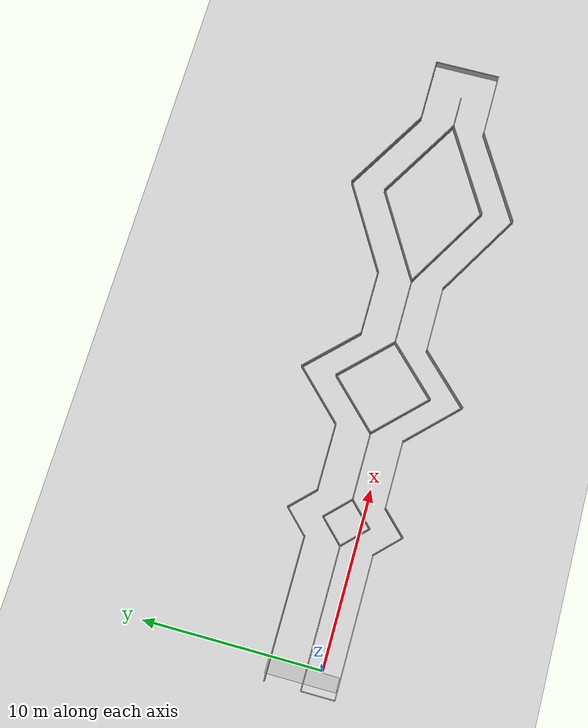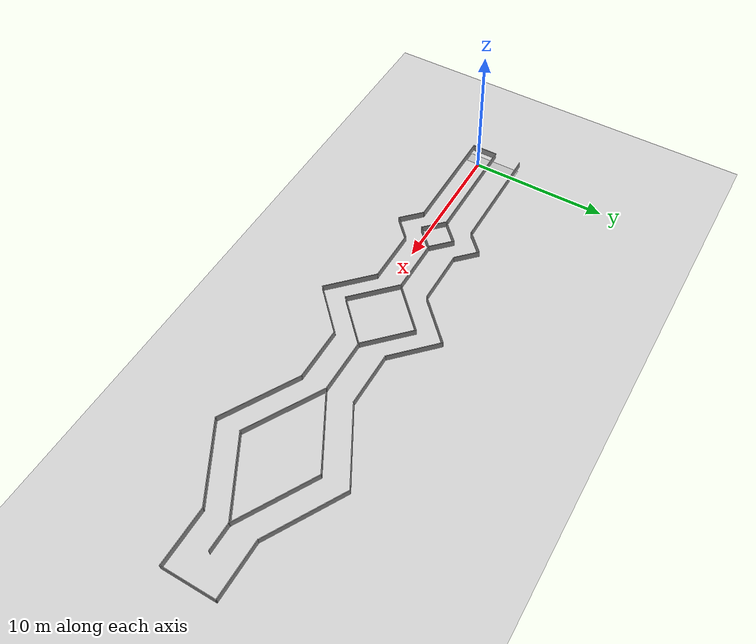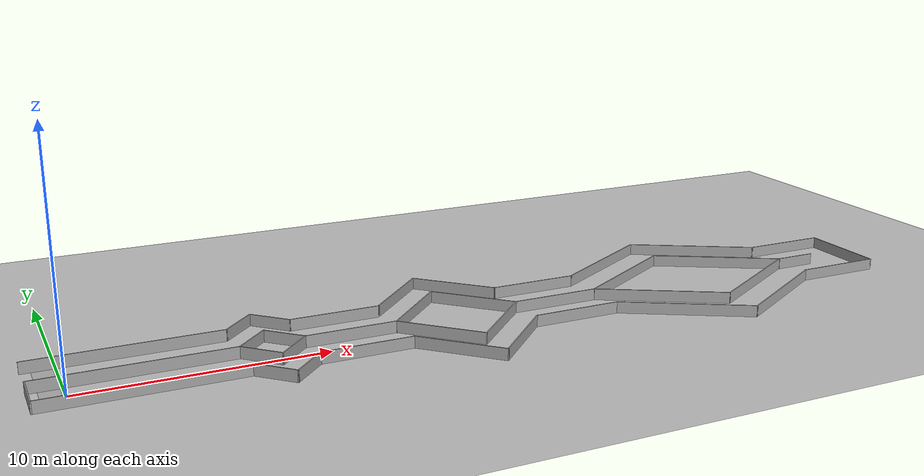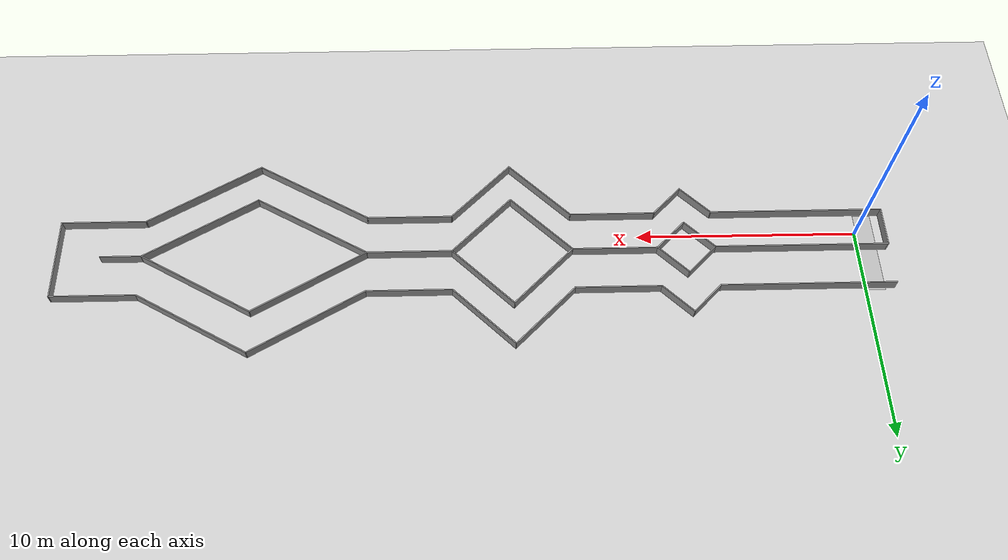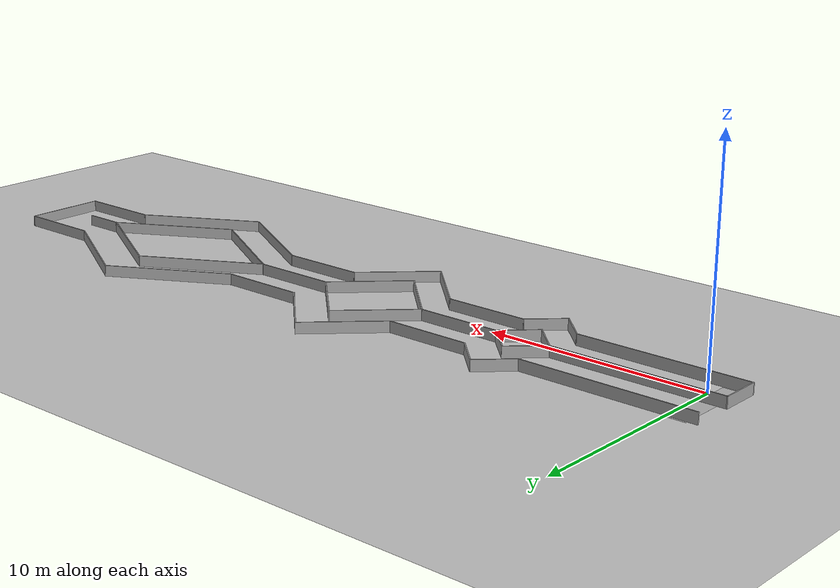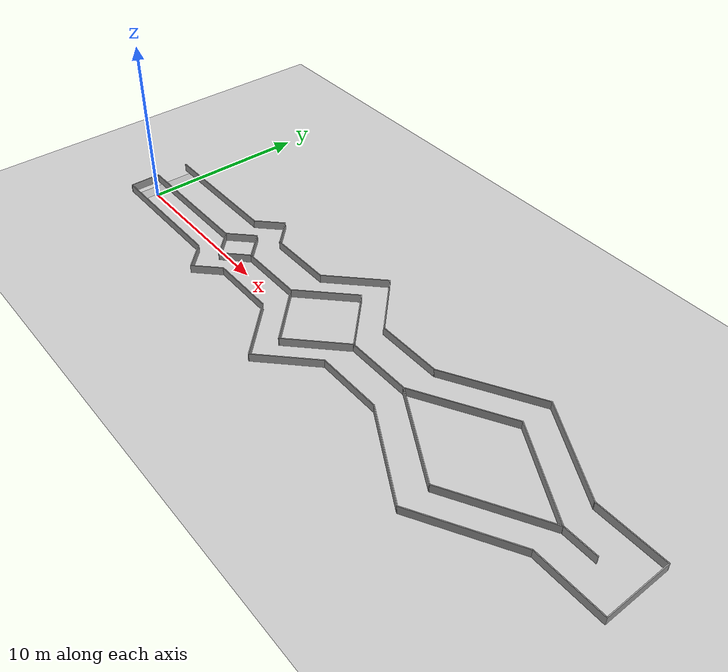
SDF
<sdf version="1.6">
 <world name="default">
  <light name="sun" type="directional">
   <pose>0 0 10 0 -0 0</pose>
   <diffuse>0.8 0.8 0.8 1</diffuse>
   <specular>0.1 0.1 0.1 1</specular>
   <attenuation>
    <range>1000</range>
    <constant>0.9</constant>
    <linear>0.01</linear>
    <quadratic>0.001</quadratic>
   </attenuation>
   <direction>-0.5 0.5 -1</direction>
  </light>
  <model name="ground_plane">
   <static>1</static>
   <link name="link">
    <collision name="collision">
     <geometry><plane><normal>0 0 1</normal><size>100 100</size></plane></geometry>
     <surface><friction><ode><mu>100</mu><mu2>50</mu2></ode></friction></surface>
    </collision>
    <visual name="visual">
     <cast_shadows>0</cast_shadows>
     <geometry><plane><normal>0 0 1</normal><size>100 100</size></plane></geometry>
     <material>
      <script><uri>file://media/materials/scripts/gazebo.material</uri><name>Gazebo/Grey</name></script>
     </material>
    </visual>
   </link>
  </model>
  <gravity>0 0 -9.8</gravity>
  <magnetic_field>6e-06 2.3e-05 -4.2e-05</magnetic_field>
  <atmosphere type="adiabatic"/>
  <physics name="default_physics" default="0" type="ode">
   <max_step_size>0.001</max_step_size>
   <real_time_factor>1</real_time_factor>
   <real_time_update_rate>1000</real_time_update_rate>
  </physics>
  <scene><ambient>0.4 0.4 0.4 1</ambient><background>0.7 0.7 0.7 1</background><shadows>1</shadows></scene>
  <spherical_coordinates>
   <surface_model>EARTH_WGS84</surface_model>
   <latitude_deg>0</latitude_deg>
   <longitude_deg>0</longitude_deg>
   <elevation>0</elevation>
   <heading_deg>0</heading_deg>
  </spherical_coordinates>
  <model name="Untitled">
   <pose>17.5019 0.90992 0 0 -0 0</pose>
   <link name="Wall_10">
    <collision name="Wall_10_Collision">
     <geometry><box><size>1.89979 0.05 0.5</size></box></geometry>
     <pose>0 0 0.25 0 -0 0</pose>
    </collision>
    <visual name="Wall_10_Visual">
     <pose>0 0 0.25 0 -0 0</pose>
     <geometry><box><size>1.89979 0.05 0.5</size></box></geometry>
     <material>
      <script><uri>file://media/materials/scripts/gazebo.material</uri><name>Gazebo/Grey</name></script>
      <ambient>1 1 1 1</ambient>
     </material>
    </visual>
    <pose>-10.293 -2.579 0 0 0 -0.785398</pose>
   </link>
   <link name="Wall_11">
    <collision name="Wall_11_Collision">
     <geometry><box><size>1.89979 0.05 0.5</size></box></geometry>
     <pose>0 0 0.25 0 -0 0</pose>
    </collision>
    <visual name="Wall_11_Visual">
     <pose>0 0 0.25 0 -0 0</pose>
     <geometry><box><size>1.89979 0.05 0.5</size></box></geometry>
     <material>
      <script><uri>file://media/materials/scripts/gazebo.material</uri><name>Gazebo/Grey</name></script>
      <ambient>1 1 1 1</ambient>
     </material>
    </visual>
    <pose>-8.985 -2.579 0 0 -0 0.785398</pose>
   </link>
   <link name="Wall_12">
    <collision name="Wall_12_Collision">
     <geometry><box><size>3.9 0.05 0.5</size></box></geometry>
     <pose>0 0 0.25 0 -0 0</pose>
    </collision>
    <visual name="Wall_12_Visual">
     <pose>0 0 0.25 0 -0 0</pose>
     <geometry><box><size>3.9 0.05 0.5</size></box></geometry>
     <material>
      <script><uri>file://media/materials/scripts/gazebo.material</uri><name>Gazebo/Grey</name></script>
      <ambient>1 1 1 1</ambient>
     </material>
    </visual>
    <pose>-6.406 -1.925 0 0 -0 0</pose>
   </link>
   <link name="Wall_13">
    <collision name="Wall_13_Collision">
     <geometry><box><size>3.9002 0.05 0.5</size></box></geometry>
     <pose>0 0 0.25 0 -0 0</pose>
    </collision>
    <visual name="Wall_13_Visual">
     <pose>0 0 0.25 0 -0 0</pose>
     <geometry><box><size>3.9002 0.05 0.5</size></box></geometry>
     <material>
      <script><uri>file://media/materials/scripts/gazebo.material</uri><name>Gazebo/Grey</name></script>
      <ambient>1 1 1 1</ambient>
     </material>
    </visual>
    <pose>-3.1195 -3.286 0 0 0 -0.785214</pose>
   </link>
   <link name="Wall_14">
    <collision name="Wall_14_Collision">
     <geometry><box><size>3.89949 0.05 0.5</size></box></geometry>
     <pose>0 0 0.25 0 -0 0</pose>
    </collision>
    <visual name="Wall_14_Visual">
     <pose>0 0 0.25 0 -0 0</pose>
     <geometry><box><size>3.89949 0.05 0.5</size></box></geometry>
     <material>
      <script><uri>file://media/materials/scripts/gazebo.material</uri><name>Gazebo/Grey</name></script>
      <ambient>1 1 1 1</ambient>
     </material>
    </visual>
    <pose>-0.397 -3.286 0 0 -0 0.785398</pose>
   </link>
   <link name="Wall_15">
    <collision name="Wall_15_Collision">
     <geometry><box><size>3.9 0.05 0.5</size></box></geometry>
     <pose>0 0 0.25 0 -0 0</pose>
    </collision>
    <visual name="Wall_15_Visual">
     <pose>0 0 0.25 0 -0 0</pose>
     <geometry><box><size>3.9 0.05 0.5</size></box></geometry>
     <material>
      <script><uri>file://media/materials/scripts/gazebo.material</uri><name>Gazebo/Grey</name></script>
      <ambient>1 1 1 1</ambient>
     </material>
    </visual>
    <pose>2.889 -1.925 0 0 -0 0</pose>
   </link>
   <link name="Wall_16">
    <collision name="Wall_16_Collision">
     <geometry><box><size>5.89978 0.05 0.5</size></box></geometry>
     <pose>0 0 0.25 0 -0 0</pose>
    </collision>
    <visual name="Wall_16_Visual">
     <pose>0 0 0.25 0 -0 0</pose>
     <geometry><box><size>5.89978 0.05 0.5</size></box></geometry>
     <material>
      <script><uri>file://media/materials/scripts/gazebo.material</uri><name>Gazebo/Grey</name></script>
      <ambient>1 1 1 1</ambient>
     </material>
    </visual>
    <pose>7.347 -3.3875 0 0 0 -0.52362</pose>
   </link>
   <link name="Wall_18">
    <collision name="Wall_18_Collision">
     <geometry><box><size>5.90039 0.05 0.5</size></box></geometry>
     <pose>0 0 0.25 0 -0 0</pose>
    </collision>
    <visual name="Wall_18_Visual">
     <pose>0 0 0.25 0 -0 0</pose>
     <geometry><box><size>5.90039 0.05 0.5</size></box></geometry>
     <material>
      <script><uri>file://media/materials/scripts/gazebo.material</uri><name>Gazebo/Grey</name></script>
      <ambient>1 1 1 1</ambient>
     </material>
    </visual>
    <pose>12.4135 -3.3875 0 0 -0 0.523535</pose>
   </link>
   <link name="Wall_20">
    <collision name="Wall_20_Collision">
     <geometry><box><size>3.9 0.05 0.5</size></box></geometry>
     <pose>0 0 0.25 0 -0 0</pose>
    </collision>
    <visual name="Wall_20_Visual">
     <pose>0 0 0.25 0 -0 0</pose>
     <geometry><box><size>3.9 0.05 0.5</size></box></geometry>
     <material>
      <script><uri>file://media/materials/scripts/gazebo.material</uri><name>Gazebo/Grey</name></script>
      <ambient>1 1 1 1</ambient>
     </material>
    </visual>
    <pose>16.872 -1.925 0 0 -0 0</pose>
   </link>
   <link name="Wall_22">
    <collision name="Wall_22_Collision">
     <geometry><box><size>3.9 0.05 0.5</size></box></geometry>
     <pose>0 0 0.25 0 -0 0</pose>
    </collision>
    <visual name="Wall_22_Visual">
     <pose>0 0 0.25 0 -0 0</pose>
     <geometry><box><size>3.9 0.05 0.5</size></box></geometry>
     <material>
      <script><uri>file://media/materials/scripts/gazebo.material</uri><name>Gazebo/Grey</name></script>
      <ambient>1 1 1 1</ambient>
     </material>
    </visual>
    <pose>18.797 0 0 0 -0 1.5708</pose>
   </link>
   <link name="Wall_23">
    <collision name="Wall_23_Collision">
     <geometry><box><size>3.9 0.05 0.5</size></box></geometry>
     <pose>0 0 0.25 0 -0 0</pose>
    </collision>
    <visual name="Wall_23_Visual">
     <pose>0 0 0.25 0 -0 0</pose>
     <geometry><box><size>3.9 0.05 0.5</size></box></geometry>
     <material>
      <script><uri>file://media/materials/scripts/gazebo.material</uri><name>Gazebo/Grey</name></script>
      <ambient>1 1 1 1</ambient>
     </material>
    </visual>
    <pose>16.872 1.925 0 0 -0 3.14159</pose>
   </link>
   <link name="Wall_24">
    <collision name="Wall_24_Collision">
     <geometry><box><size>5.89978 0.05 0.5</size></box></geometry>
     <pose>0 0 0.25 0 -0 0</pose>
    </collision>
    <visual name="Wall_24_Visual">
     <pose>0 0 0.25 0 -0 0</pose>
     <geometry><box><size>5.89978 0.05 0.5</size></box></geometry>
     <material>
      <script><uri>file://media/materials/scripts/gazebo.material</uri><name>Gazebo/Grey</name></script>
      <ambient>1 1 1 1</ambient>
     </material>
    </visual>
    <pose>12.414 3.3875 0 0 -0 2.61797</pose>
   </link>
   <link name="Wall_27">
    <collision name="Wall_27_Collision">
     <geometry><box><size>5.89978 0.05 0.5</size></box></geometry>
     <pose>0 0 0.25 0 -0 0</pose>
    </collision>
    <visual name="Wall_27_Visual">
     <pose>0 0 0.25 0 -0 0</pose>
     <geometry><box><size>5.89978 0.05 0.5</size></box></geometry>
     <material>
      <script><uri>file://media/materials/scripts/gazebo.material</uri><name>Gazebo/Grey</name></script>
      <ambient>1 1 1 1</ambient>
     </material>
    </visual>
    <pose>7.348 3.3875 0 0 0 -2.61797</pose>
   </link>
   <link name="Wall_28">
    <collision name="Wall_28_Collision">
     <geometry><box><size>3.9 0.05 0.5</size></box></geometry>
     <pose>0 0 0.25 0 -0 0</pose>
    </collision>
    <visual name="Wall_28_Visual">
     <pose>0 0 0.25 0 -0 0</pose>
     <geometry><box><size>3.9 0.05 0.5</size></box></geometry>
     <material>
      <script><uri>file://media/materials/scripts/gazebo.material</uri><name>Gazebo/Grey</name></script>
      <ambient>1 1 1 1</ambient>
     </material>
    </visual>
    <pose>2.89 1.925 0 0 -0 3.14159</pose>
   </link>
   <link name="Wall_29">
    <collision name="Wall_29_Collision">
     <geometry><box><size>3.9002 0.05 0.5</size></box></geometry>
     <pose>0 0 0.25 0 -0 0</pose>
    </collision>
    <visual name="Wall_29_Visual">
     <pose>0 0 0.25 0 -0 0</pose>
     <geometry><box><size>3.9002 0.05 0.5</size></box></geometry>
     <material>
      <script><uri>file://media/materials/scripts/gazebo.material</uri><name>Gazebo/Grey</name></script>
      <ambient>1 1 1 1</ambient>
     </material>
    </visual>
    <pose>-0.3965 3.286 0 0 -0 2.35638</pose>
   </link>
   <link name="Wall_30">
    <collision name="Wall_30_Collision">
     <geometry><box><size>3.89949 0.05 0.5</size></box></geometry>
     <pose>0 0 0.25 0 -0 0</pose>
    </collision>
    <visual name="Wall_30_Visual">
     <pose>0 0 0.25 0 -0 0</pose>
     <geometry><box><size>3.89949 0.05 0.5</size></box></geometry>
     <material>
      <script><uri>file://media/materials/scripts/gazebo.material</uri><name>Gazebo/Grey</name></script>
      <ambient>1 1 1 1</ambient>
     </material>
    </visual>
    <pose>-3.119 3.286 0 0 0 -2.35619</pose>
   </link>
   <link name="Wall_31">
    <collision name="Wall_31_Collision">
     <geometry><box><size>3.9 0.05 0.5</size></box></geometry>
     <pose>0 0 0.25 0 -0 0</pose>
    </collision>
    <visual name="Wall_31_Visual">
     <pose>0 0 0.25 0 -0 0</pose>
     <geometry><box><size>3.9 0.05 0.5</size></box></geometry>
     <material>
      <script><uri>file://media/materials/scripts/gazebo.material</uri><name>Gazebo/Grey</name></script>
      <ambient>1 1 1 1</ambient>
     </material>
    </visual>
    <pose>-6.405 1.925 0 0 -0 3.14159</pose>
   </link>
   <link name="Wall_32">
    <collision name="Wall_32_Collision">
     <geometry><box><size>1.89979 0.05 0.5</size></box></geometry>
     <pose>0 0 0.25 0 -0 0</pose>
    </collision>
    <visual name="Wall_32_Visual">
     <pose>0 0 0.25 0 -0 0</pose>
     <geometry><box><size>1.89979 0.05 0.5</size></box></geometry>
     <material>
      <script><uri>file://media/materials/scripts/gazebo.material</uri><name>Gazebo/Grey</name></script>
      <ambient>1 1 1 1</ambient>
     </material>
    </visual>
    <pose>-8.984 2.579 0 0 -0 2.35619</pose>
   </link>
   <link name="Wall_33">
    <collision name="Wall_33_Collision">
     <geometry><box><size>1.9005 0.05 0.5</size></box></geometry>
     <pose>0 0 0.25 0 -0 0</pose>
    </collision>
    <visual name="Wall_33_Visual">
     <pose>0 0 0.25 0 -0 0</pose>
     <geometry><box><size>1.9005 0.05 0.5</size></box></geometry>
     <material>
      <script><uri>file://media/materials/scripts/gazebo.material</uri><name>Gazebo/Grey</name></script>
      <ambient>1 1 1 1</ambient>
     </material>
    </visual>
    <pose>-10.2925 2.579 0 0 0 -2.35658</pose>
   </link>
   <link name="Wall_34">
    <collision name="Wall_34_Collision">
     <geometry><box><size>7.89952 0.05 0.5</size></box></geometry>
     <pose>0 0 0.25 0 -0 0</pose>
    </collision>
    <visual name="Wall_34_Visual">
     <pose>0 0 0.25 0 -0 0</pose>
     <geometry><box><size>7.89952 0.05 0.5</size></box></geometry>
     <material>
      <script><uri>file://media/materials/scripts/gazebo.material</uri><name>Gazebo/Grey</name></script>
      <ambient>1 1 1 1</ambient>
     </material>
    </visual>
    <pose>-14.872 1.925 0 0 -0 3.14159</pose>
   </link>
   <link name="Wall_36">
    <collision name="Wall_36_Collision">
     <geometry><box><size>1.90014 0.05 0.5</size></box></geometry>
     <pose>0 0 0.25 0 -0 0</pose>
    </collision>
    <visual name="Wall_36_Visual">
     <pose>0 0 0.25 0 -0 0</pose>
     <geometry><box><size>1.90014 0.05 0.5</size></box></geometry>
     <material>
      <script><uri>file://media/materials/scripts/gazebo.material</uri><name>Gazebo/Grey</name></script>
      <ambient>1 1 1 1</ambient>
     </material>
    </visual>
    <pose>-18.797 -1 0 0 -0 1.5708</pose>
   </link>
   <link name="Wall_37">
    <collision name="Wall_37_Collision">
     <geometry><box><size>7.9 0.05 0.5</size></box></geometry>
     <pose>0 0 0.25 0 -0 0</pose>
    </collision>
    <visual name="Wall_37_Visual">
     <pose>0 0 0.25 0 -0 0</pose>
     <geometry><box><size>7.9 0.05 0.5</size></box></geometry>
     <material>
      <script><uri>file://media/materials/scripts/gazebo.material</uri><name>Gazebo/Grey</name></script>
      <ambient>1 1 1 1</ambient>
     </material>
    </visual>
    <pose>-14.872 -0.075 0 0 -0 0</pose>
   </link>
   <link name="Wall_38">
    <collision name="Wall_38_Collision">
     <geometry><box><size>1.89979 0.05 0.5</size></box></geometry>
     <pose>0 0 0.25 0 -0 0</pose>
    </collision>
    <visual name="Wall_38_Visual">
     <pose>0 0 0.25 0 -0 0</pose>
     <geometry><box><size>1.89979 0.05 0.5</size></box></geometry>
     <material>
      <script><uri>file://media/materials/scripts/gazebo.material</uri><name>Gazebo/Grey</name></script>
      <ambient>1 1 1 1</ambient>
     </material>
    </visual>
    <pose>-10.293 0.579 0 0 -0 0.785398</pose>
   </link>
   <link name="Wall_39">
    <collision name="Wall_39_Collision">
     <geometry><box><size>1.89979 0.05 0.5</size></box></geometry>
     <pose>0 0 0.25 0 -0 0</pose>
    </collision>
    <visual name="Wall_39_Visual">
     <pose>0 0 0.25 0 -0 0</pose>
     <geometry><box><size>1.89979 0.05 0.5</size></box></geometry>
     <material>
      <script><uri>file://media/materials/scripts/gazebo.material</uri><name>Gazebo/Grey</name></script>
      <ambient>1 1 1 1</ambient>
     </material>
    </visual>
    <pose>-8.985 0.579 0 0 0 -0.785398</pose>
   </link>
   <link name="Wall_40">
    <collision name="Wall_40_Collision">
     <geometry><box><size>3.9 0.05 0.5</size></box></geometry>
     <pose>0 0 0.25 0 -0 0</pose>
    </collision>
    <visual name="Wall_40_Visual">
     <pose>0 0 0.25 0 -0 0</pose>
     <geometry><box><size>3.9 0.05 0.5</size></box></geometry>
     <material>
      <script><uri>file://media/materials/scripts/gazebo.material</uri><name>Gazebo/Grey</name></script>
      <ambient>1 1 1 1</ambient>
     </material>
    </visual>
    <pose>-6.406 -0.075 0 0 -0 0</pose>
   </link>
   <link name="Wall_41">
    <collision name="Wall_41_Collision">
     <geometry><box><size>3.9009 0.05 0.5</size></box></geometry>
     <pose>0 0 0.25 0 -0 0</pose>
    </collision>
    <visual name="Wall_41_Visual">
     <pose>0 0 0.25 0 -0 0</pose>
     <geometry><box><size>3.9009 0.05 0.5</size></box></geometry>
     <material>
      <script><uri>file://media/materials/scripts/gazebo.material</uri><name>Gazebo/Grey</name></script>
      <ambient>1 1 1 1</ambient>
     </material>
    </visual>
    <pose>-3.1195 1.2865 0 0 -0 0.785398</pose>
   </link>
   <link name="Wall_42">
    <collision name="Wall_42_Collision">
     <geometry><box><size>3.9002 0.05 0.5</size></box></geometry>
     <pose>0 0 0.25 0 -0 0</pose>
    </collision>
    <visual name="Wall_42_Visual">
     <pose>0 0 0.25 0 -0 0</pose>
     <geometry><box><size>3.9002 0.05 0.5</size></box></geometry>
     <material>
      <script><uri>file://media/materials/scripts/gazebo.material</uri><name>Gazebo/Grey</name></script>
      <ambient>1 1 1 1</ambient>
     </material>
    </visual>
    <pose>-0.397 1.2865 0 0 0 -0.785582</pose>
   </link>
   <link name="Wall_43">
    <collision name="Wall_43_Collision">
     <geometry><box><size>3.9 0.05 0.5</size></box></geometry>
     <pose>0 0 0.25 0 -0 0</pose>
    </collision>
    <visual name="Wall_43_Visual">
     <pose>0 0 0.25 0 -0 0</pose>
     <geometry><box><size>3.9 0.05 0.5</size></box></geometry>
     <material>
      <script><uri>file://media/materials/scripts/gazebo.material</uri><name>Gazebo/Grey</name></script>
      <ambient>1 1 1 1</ambient>
     </material>
    </visual>
    <pose>2.889 -0.075 0 0 -0 0</pose>
   </link>
   <link name="Wall_44">
    <collision name="Wall_44_Collision">
     <geometry><box><size>5.89978 0.05 0.5</size></box></geometry>
     <pose>0 0 0.25 0 -0 0</pose>
    </collision>
    <visual name="Wall_44_Visual">
     <pose>0 0 0.25 0 -0 0</pose>
     <geometry><box><size>5.89978 0.05 0.5</size></box></geometry>
     <material>
      <script><uri>file://media/materials/scripts/gazebo.material</uri><name>Gazebo/Grey</name></script>
      <ambient>1 1 1 1</ambient>
     </material>
    </visual>
    <pose>7.347 1.3875 0 0 -0 0.52362</pose>
   </link>
   <link name="Wall_45">
    <collision name="Wall_45_Collision">
     <geometry><box><size>5.90065 0.05 0.5</size></box></geometry>
     <pose>0 0 0.25 0 -0 0</pose>
    </collision>
    <visual name="Wall_45_Visual">
     <pose>0 0 0.25 0 -0 0</pose>
     <geometry><box><size>5.90065 0.05 0.5</size></box></geometry>
     <material>
      <script><uri>file://media/materials/scripts/gazebo.material</uri><name>Gazebo/Grey</name></script>
      <ambient>1 1 1 1</ambient>
     </material>
    </visual>
    <pose>12.4135 1.3875 0 0 0 -0.523535</pose>
   </link>
   <link name="Wall_46">
    <collision name="Wall_46_Collision">
     <geometry><box><size>1.89951 0.05 0.5</size></box></geometry>
     <pose>0 0 0.25 0 -0 0</pose>
    </collision>
    <visual name="Wall_46_Visual">
     <pose>0 0 0.25 0 -0 0</pose>
     <geometry><box><size>1.89951 0.05 0.5</size></box></geometry>
     <material>
      <script><uri>file://media/materials/scripts/gazebo.material</uri><name>Gazebo/Grey</name></script>
      <ambient>1 1 1 1</ambient>
     </material>
    </visual>
    <pose>15.872 -0.075 0 0 -0 0</pose>
   </link>
   <link name="Wall_48">
    <collision name="Wall_48_Collision">
     <geometry><box><size>1.89979 0.05 0.5</size></box></geometry>
     <pose>0 0 0.25 0 -0 0</pose>
    </collision>
    <visual name="Wall_48_Visual">
     <pose>0 0 0.25 0 -0 0</pose>
     <geometry><box><size>1.89979 0.05 0.5</size></box></geometry>
     <material>
      <script><uri>file://media/materials/scripts/gazebo.material</uri><name>Gazebo/Grey</name></script>
      <ambient>1 1 1 1</ambient>
     </material>
    </visual>
    <pose>-10.293 -0.729 0 0 0 -0.785398</pose>
   </link>
   <link name="Wall_49">
    <collision name="Wall_49_Collision">
     <geometry><box><size>1.89979 0.05 0.5</size></box></geometry>
     <pose>0 0 0.25 0 -0 0</pose>
    </collision>
    <visual name="Wall_49_Visual">
     <pose>0 0 0.25 0 -0 0</pose>
     <geometry><box><size>1.89979 0.05 0.5</size></box></geometry>
     <material>
      <script><uri>file://media/materials/scripts/gazebo.material</uri><name>Gazebo/Grey</name></script>
      <ambient>1 1 1 1</ambient>
     </material>
    </visual>
    <pose>-8.985 -0.729 0 0 -0 0.785398</pose>
   </link>
   <link name="Wall_51">
    <collision name="Wall_51_Collision">
     <geometry><box><size>3.9002 0.05 0.5</size></box></geometry>
     <pose>0 0 0.25 0 -0 0</pose>
    </collision>
    <visual name="Wall_51_Visual">
     <pose>0 0 0.25 0 -0 0</pose>
     <geometry><box><size>3.9002 0.05 0.5</size></box></geometry>
     <material>
      <script><uri>file://media/materials/scripts/gazebo.material</uri><name>Gazebo/Grey</name></script>
      <ambient>1 1 1 1</ambient>
     </material>
    </visual>
    <pose>-3.1195 -1.436 0 0 0 -0.785214</pose>
   </link>
   <link name="Wall_52">
    <collision name="Wall_52_Collision">
     <geometry><box><size>3.89949 0.05 0.5</size></box></geometry>
     <pose>0 0 0.25 0 -0 0</pose>
    </collision>
    <visual name="Wall_52_Visual">
     <pose>0 0 0.25 0 -0 0</pose>
     <geometry><box><size>3.89949 0.05 0.5</size></box></geometry>
     <material>
      <script><uri>file://media/materials/scripts/gazebo.material</uri><name>Gazebo/Grey</name></script>
      <ambient>1 1 1 1</ambient>
     </material>
    </visual>
    <pose>-0.397 -1.436 0 0 -0 0.785398</pose>
   </link>
   <link name="Wall_54">
    <collision name="Wall_54_Collision">
     <geometry><box><size>5.89978 0.05 0.5</size></box></geometry>
     <pose>0 0 0.25 0 -0 0</pose>
    </collision>
    <visual name="Wall_54_Visual">
     <pose>0 0 0.25 0 -0 0</pose>
     <geometry><box><size>5.89978 0.05 0.5</size></box></geometry>
     <material>
      <script><uri>file://media/materials/scripts/gazebo.material</uri><name>Gazebo/Grey</name></script>
      <ambient>1 1 1 1</ambient>
     </material>
    </visual>
    <pose>7.347 -1.5375 0 0 0 -0.52362</pose>
   </link>
   <link name="Wall_55">
    <collision name="Wall_55_Collision">
     <geometry><box><size>5.90065 0.05 0.5</size></box></geometry>
     <pose>0 0 0.25 0 -0 0</pose>
    </collision>
    <visual name="Wall_55_Visual">
     <pose>0 0 0.25 0 -0 0</pose>
     <geometry><box><size>5.90065 0.05 0.5</size></box></geometry>
     <material>
      <script><uri>file://media/materials/scripts/gazebo.material</uri><name>Gazebo/Grey</name></script>
      <ambient>1 1 1 1</ambient>
     </material>
    </visual>
    <pose>12.4135 -1.5375 0 0 -0 0.523535</pose>
   </link>
   <link name="Wall_9">
    <collision name="Wall_9_Collision">
     <geometry><box><size>7.9 0.05 0.5</size></box></geometry>
     <pose>0 0 0.25 0 -0 0</pose>
    </collision>
    <visual name="Wall_9_Visual">
     <pose>0 0 0.25 0 -0 0</pose>
     <geometry><box><size>7.9 0.05 0.5</size></box></geometry>
     <material>
      <script><uri>file://media/materials/scripts/gazebo.material</uri><name>Gazebo/Grey</name></script>
      <ambient>1 1 1 1</ambient>
     </material>
    </visual>
    <pose>-14.872 -1.925 0 0 -0 0</pose>
   </link>
   <static>1</static>
  </model>
  <model name="smartcar_plane">
   <static>1</static>
   <link name="link">
    <collision name="collision">
     <geometry><box><size>0.8 3.9 0.001</size></box></geometry>
     <surface><friction><ode><mu>100</mu><mu2>50</mu2></ode></friction></surface>
    </collision>
    <visual name="visual">
     <geometry><box><size>0.8 3.9 0.001</size></box></geometry>
     <material>
      <script>
       <uri>model://smartcar_plane/materials/scripts</uri>
       <uri>model://smartcar_plane/materials/textures/</uri>
       <name>SmartcarPlane/Image</name>
      </script>
     </material>
    </visual>
   </link>
   <pose>-0.5 1 0 0 -0 0</pose>
  </model>
 </world>
</sdf>
